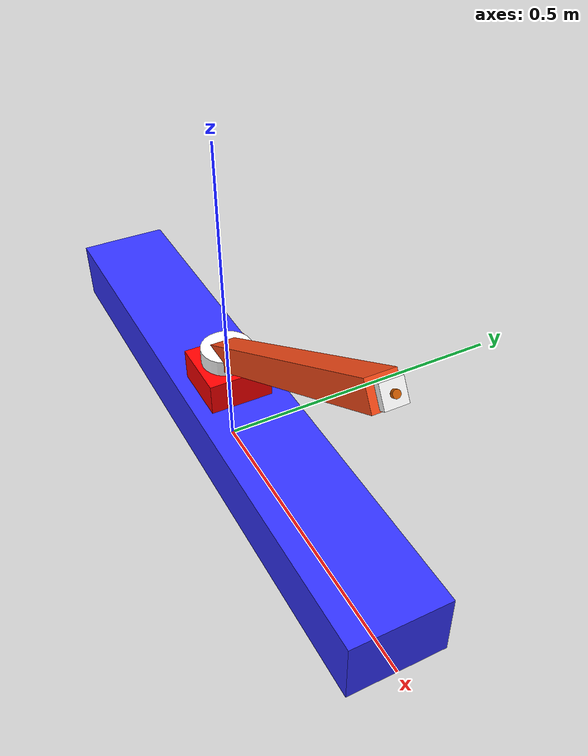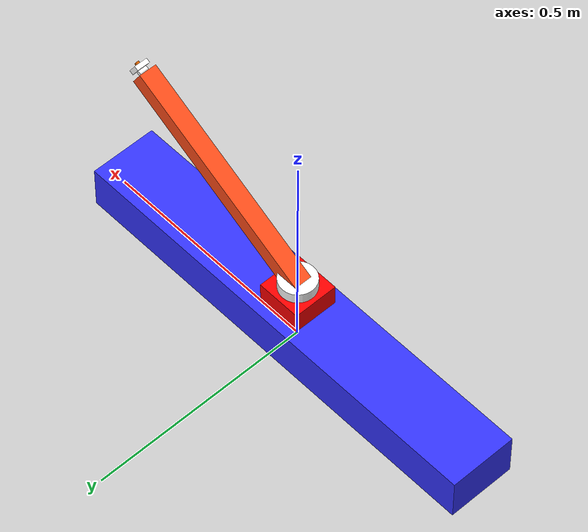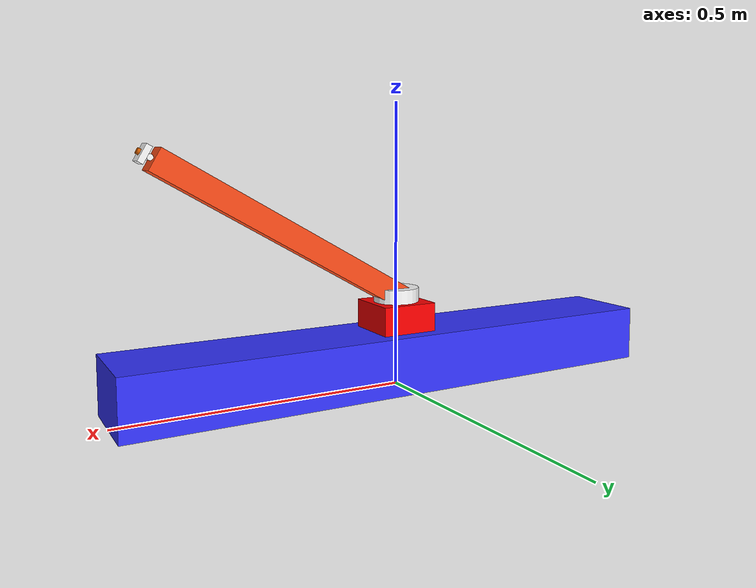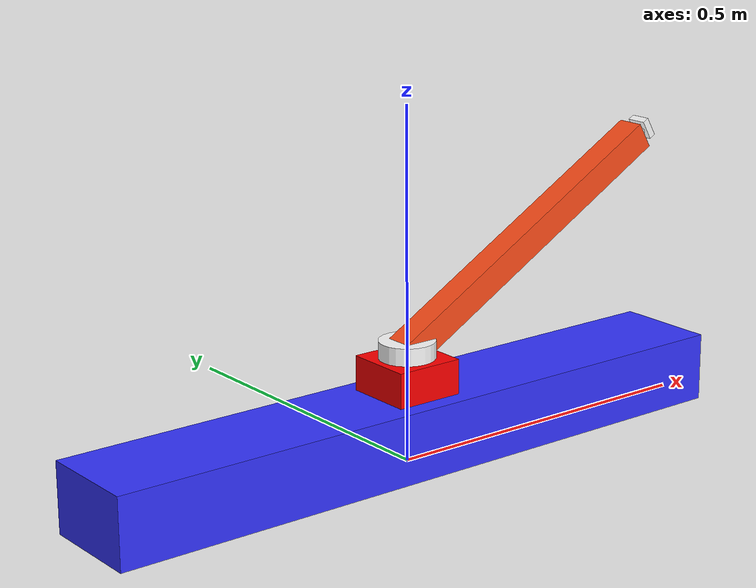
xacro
<?xml version="1.0"?>
<robot xmlns:xacro="http://www.ros.org/wiki/xacro"  name="robot">

<xacro:include filename="robot_include.xacro" />

<link name="world"> </link>

<joint name="base_joint" type="fixed">
    <origin xyz="0.0 0.0 0.0" rpy="0.0 0.0 0.0"/>
    <parent link="world"/>
    <child link="base_link"/>

</joint>

<link name="base_link">
    <visual>
        <origin xyz="0.0 0.0 0.05" rpy="0.0 0.0 0.0"/>
        <geometry>
            <box size="1 0.15 0.1"/>
        </geometry>
        <material name="blue"/>
    </visual>
    <collision>
        <origin xyz="0.0 0.0 0.05" rpy="0.0 0.0 0.0"/>
        <geometry>
            <box size="1 0.15 0.1"/>
        </geometry>
    </collision>
    <xacro:inertial_box mass="5" x="1" y="0.15" z="0.1">
        <origin xyz="0.0 0.0 0.05" rpy="0.0 0.0 0.0"/>
    </xacro:inertial_box>
</link>

<joint name="slider_joint" type="prismatic">
    <origin xyz="0.0 0.0 0.1" rpy="0.0 0.0 0.0"/>
    <parent link="base_link"/>
    <child link="slider_link"/>
    <axis xyz="1 0 0"/>
    <limit lower="-0.4" upper="0.4" velocity="100" effort="100"/>
    <dynamics damping="10.0" friction="10.0"/>

</joint>

<link name="slider_link">
    <visual>
        <origin xyz="0.0 0.0 0.025" rpy="0.0 0.0 0.0"/>
        <geometry>
            <box size="0.1 0.1 0.05"/>
        </geometry>
        <material name="red"/>

    </visual>
    <collision>
        <origin xyz="0.0 0.0 0.025" rpy="0.0 0.0 0.0"/>
        <geometry>
            <box size="0.1 0.1 0.05"/>
        </geometry>
    </collision>
    <xacro:inertial_box mass="0.75" x="0.1" y="0.1" z="0.05">
        <origin xyz="0.0 0.0 0.025" rpy="0.0 0.0 0.0"/>
    </xacro:inertial_box>
</link>

<joint name="rotor_joint" type="revolute">
    <origin xyz="0.0 0.0 0.05" rpy="0.0 0.0 0.0"/>
    <parent link="slider_link"/>
    <child link="rotor_link"/>
    <axis xyz="0.0 0.0 1"/>
    <limit lower="${-pi}" upper="${pi}" effort="100" velocity="100"/>
    <dynamics friction="10.0"/>

</joint>

<link name="rotor_link">
    <visual>
        <origin xyz="0.0 0.0 0.0125" rpy="0.0 0.0 0.0"/>
        <geometry>
            <cylinder radius="0.04" length="0.025"/>
        </geometry>
        <material name="white"/>
    </visual>
    <collision>
        <origin xyz="0.0 0.0 0.0125" rpy="0.0 0.0 0.0"/>
        <geometry>
            <cylinder radius="0.04" length="0.025"/>
        </geometry>
    </collision>
    <xacro:inertial_cylinder mass="0.5" length="0.025" radius="0.04">
        <origin xyz="0.0 0.0 0.0125" rpy="0.0 0.0 0.0"/>
    </xacro:inertial_cylinder>

</link>

<joint name="arm_joint" type="revolute">
    <origin xyz="0.0 0.0 -0.0125" rpy="0.0 0.0 0.0"/>
    <parent link="rotor_link"/>
    <child link="arm_link"/>
    <axis xyz="0.0 -1 0.0"/>
    <limit lower="${-pi/6}" upper="${-pi/2}" effort="100" velocity="100"/>
    <dynamics friction="10.0"/>

</joint>

<link name="arm_link">
    <visual>
        <origin xyz="-0.02 0.0 0.25" rpy="0.0 0.0 0.0"/>
        <geometry>
            <box size="0.04 0.04 0.5"/>
        </geometry>
        <material name="orange"/>
    </visual>
    <collision>
        <origin xyz="-0.02 0.0 0.25" rpy="0.0 0.0 0.0"/>
        <geometry>
            <box size="0.04 0.04 0.5"/>
        </geometry>
    </collision>
    <xacro:inertial_box mass="0.5" x="0.04" y="0.04" z="0.5">
        <origin xyz="-0.02 0.0 0.25" rpy="0.0 0.0 0.0"/>
    </xacro:inertial_box>

</link>

<joint name="camera_joint" type="fixed">
    <origin xyz="-0.02 0.0 0.5" rpy="0.0 0.0 0.0"/>
    <parent link="arm_link"/>
    <child link="camera_link"/>

</joint>

<link name="camera_link">
    <visual>
        <origin xyz="0.0 0.0 0.005" rpy="${pi/2} 0.0 0.0"/>
        <geometry>
            <cylinder radius="0.005" length="0.02"/>
        </geometry>
        <material name="white"/>
    </visual>
    <visual>
        <origin xyz="0.0 0.0 0.015" rpy="0.0 0.0 0.0"/>
        <geometry>
            <box size="0.03 0.03 0.01"/>
        </geometry>
        <material name="white"/>
    </visual>
    <visual>
        <origin xyz="0.0 0.0 0.0225" rpy="0.0 0.0 0.0"/>
        <geometry>
            <cylinder radius="0.005" length="0.005"/>
        </geometry>
    </visual>
    <collision>
        <origin xyz="0.0 0.0 0.02" rpy="${pi/2} 0.0 0.0"/>
        <geometry>
            <box size="0.04 0.02 0.04"/>
        </geometry>
    </collision>
    <xacro:inertial_box mass="0.1" x="0.04" y="0.02" z="0.4">
        <origin xyz="0.0 0.0 0.02" rpy="0.0 0.0 0.0"/>
    </xacro:inertial_box>

</link>

<xacro:include filename="gazebo.xacro" />

</robot>

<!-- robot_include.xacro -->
<robot xmlns:xacro="http://www.ros.org/wiki/xacro" >

    <!-- This file is not a robot in and of itself, it just contains some useful tags that could be included in any robot -->

    <!-- Specify some colours -->

    <material name="white">
        <color rgba="1 1 1 1"/>
    </material>

    <material name="orange">
        <color rgba="1 0.3 0.1 1"/>
    </material>

    <material name="blue">
        <color rgba="0.2 0.2 1 1"/>
    </material>

    <material name="red">
        <color rgba="1 0.0 0.0 1"/>
    </material>

    <!-- Specify some standard inertial calculations https://en.wikipedia.org/wiki/List_of_moments_of_inertia -->
    <!-- These make use of xacro's mathematical functionality -->

    <xacro:macro name="inertial_sphere" params="mass radius *origin">
        <inertial>
            <xacro:insert_block name="origin"/>
            <mass value="${mass}" />
            <inertia ixx="${(2/5) * mass * (radius*radius)}" ixy="0.0" ixz="0.0"
                    iyy="${(2/5) * mass * (radius*radius)}" iyz="0.0"
                    izz="${(2/5) * mass * (radius*radius)}" />
        </inertial>
    </xacro:macro>

    <xacro:macro name="inertial_box" params="mass x y z *origin">
        <inertial>
            <xacro:insert_block name="origin"/>
            <mass value="${mass}" />
            <inertia ixx="${(1/12) * mass * (y*y+z*z)}" ixy="0.0" ixz="0.0"
                    iyy="${(1/12) * mass * (x*x+z*z)}" iyz="0.0"
                    izz="${(1/12) * mass * (x*x+y*y)}" />
        </inertial>
    </xacro:macro>

    <xacro:macro name="inertial_cylinder" params="mass length radius *origin">
        <inertial>
            <xacro:insert_block name="origin"/>
            <mass value="${mass}" />
            <inertia ixx="${(1/12) * mass * (3*radius*radius + length*length)}" ixy="0.0" ixz="0.0"
                    iyy="${(1/12) * mass * (3*radius*radius + length*length)}" iyz="0.0"
                    izz="${(1/2) * mass * (radius*radius)}" />
        </inertial>
    </xacro:macro>

</robot>

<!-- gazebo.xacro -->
<robot xmlns:xacro="http://www.ros.org/wiki/xacro">

    <!-- To include it add the following line -->

    <!-- Instead, we need to add gazebo tags for our links that refer to Gazebo materials -->

    <gazebo reference="base_link">
        <material>Gazebo/Blue</material>
    </gazebo>

    <gazebo reference="slider_link">
        <material>Gazebo/Red</material>
    </gazebo>

    <gazebo reference="arm_link">
        <material>Gazebo/Orange</material>
    </gazebo>

    <!-- Gazebo requires the use of plugins to interact with other systems such as ROS. -->

    <!-- This plugin will publish the joint_states for the selected joints
            (which robot_state_publisher can then use to broadcast the approprate tf). -->

    <gazebo>
        <plugin name="gazebo_ros_joint_state_publisher"
            filename="libgazebo_ros_joint_state_publisher.so">
            <update_rate>20</update_rate>
            <joint_name>slider_joint</joint_name>
            <joint_name>arm_joint</joint_name>
            <joint_name>rotor_joint</joint_name>
            <joint_name>camera_joint</joint_name>
        </plugin>
    </gazebo>

    <gazebo>
        <plugin name="gazebo_ros_joint_pose_trajectory"
            filename="libgazebo_ros_joint_pose_trajectory.so">
            <update_rate>20</update_rate>
        </plugin>
    </gazebo>

     <joint name="camera_optical_joint" type="fixed">
        <origin xyz="1 1 1" rpy="-1.571 0 -1.571" />
        <parent link="camera_link" />
        <child link="camera_link_optical" />
    </joint>

    <link name="camera_link_optical"></link>

    <!-- Add a gazebo tag for the ORIGINAL camera_link (but in the plugin we reference the optical frame so that ROS can orient things correctly) -->
    <!-- Note that although visualise is set to true, it won't actually visualise the depth camera in gazebo. To see the preview,
            try swapping "depth" to "camera"-->
    <gazebo reference="camera_link">
        <sensor type="camera" name="my_camera">
            <update_rate>20</update_rate>
            <visualize>true</visualize>
            <camera name="cam">
                <horizontal_fov>1.3962634</horizontal_fov>
                <image>
                    <width>640</width>
                    <height>480</height>
                    <format>R8B8G8</format>
                </image>
                <clip>
                    <near>0.02</near>
                    <far>300</far>
                </clip>
                <noise>
                    <type>gaussian</type>
                    <mean>0.0</mean>
                    <stddev>0.007</stddev>
                </noise>
            </camera>
            <plugin name="camera_controller" filename="libgazebo_ros_camera.so">
                <frame_name>camera_link_optical</frame_name>
                <min_depth>0.1</min_depth>
                <max_depth>500</max_depth>
            </plugin>
        </sensor>
    </gazebo>

</robot>
